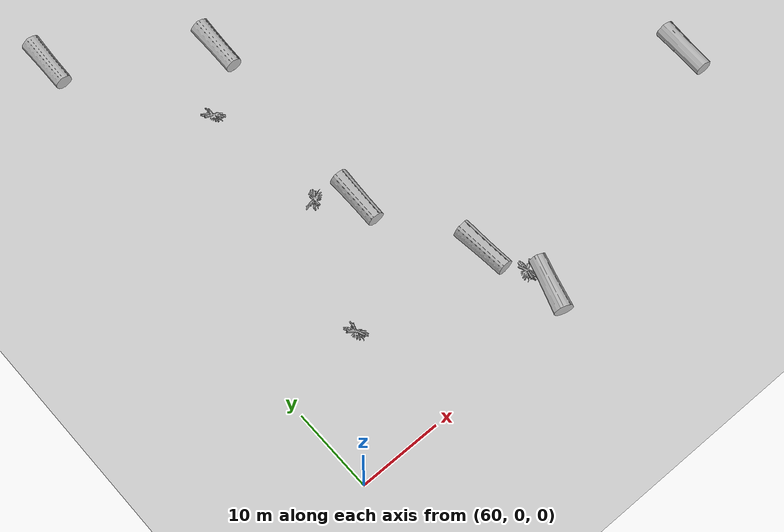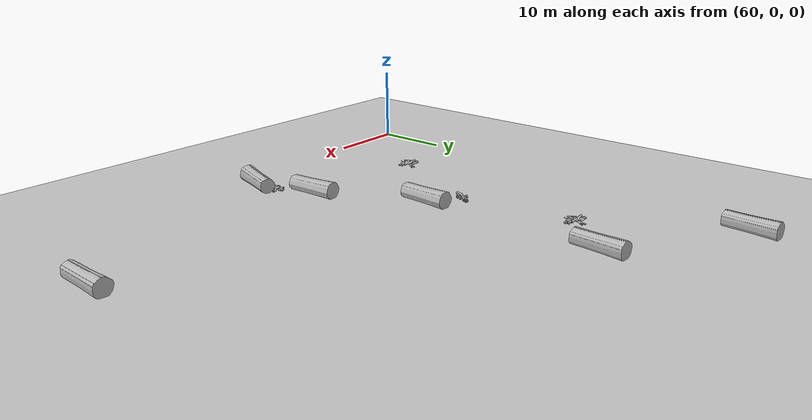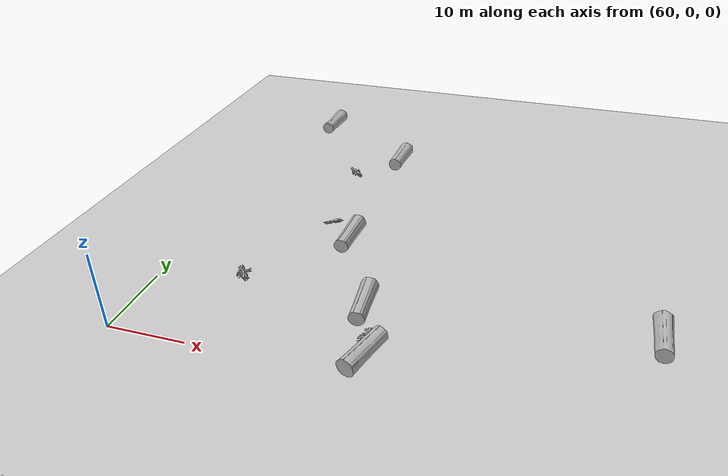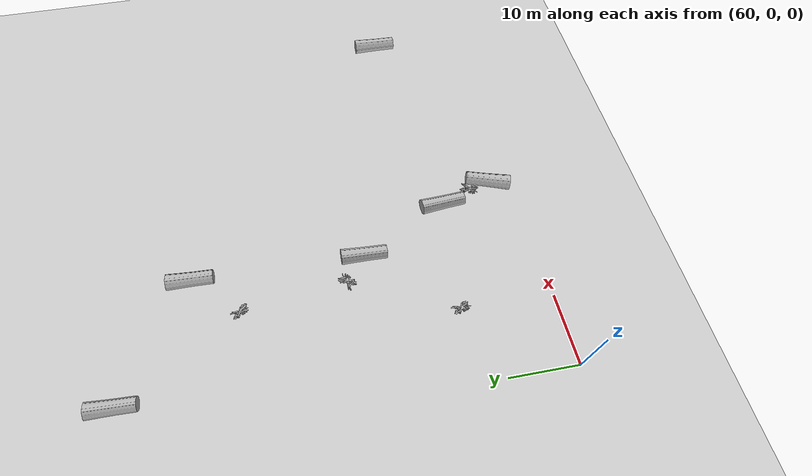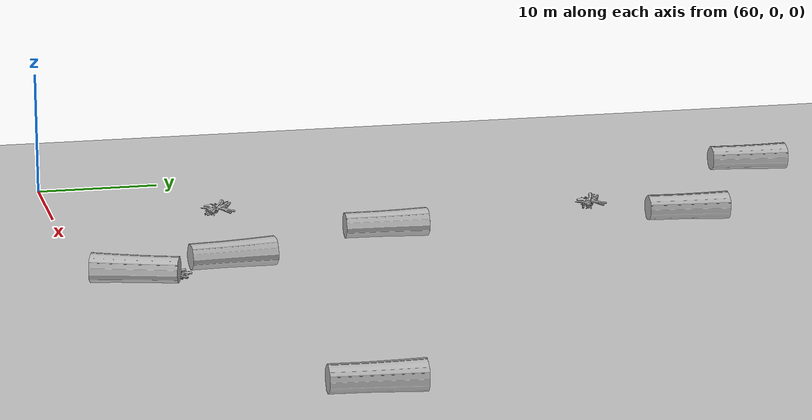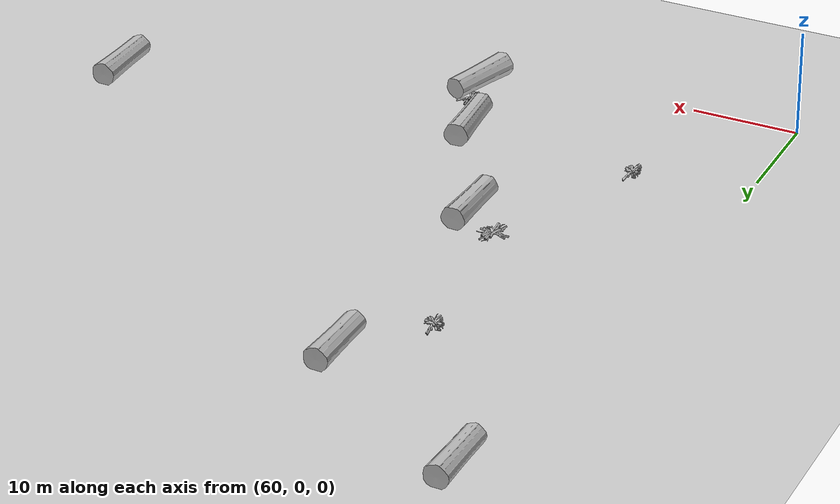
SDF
<sdf version="1.7">
 <world name="default">
  <model name="ground_plane">
   <static>1</static>
   <link name="link">
    <collision name="collision">
     <geometry><plane><normal>0 0 1</normal><size>100 100</size></plane></geometry>
     <surface><friction><ode><mu>100</mu><mu2>50</mu2></ode></friction></surface>
    </collision>
    <visual name="visual">
     <cast_shadows>0</cast_shadows>
     <geometry><plane><normal>0 0 1</normal><size>100 100</size></plane></geometry>
     <material>
      <script><uri>file://media/materials/scripts/gazebo.material</uri><name>Gazebo/Grey</name></script>
     </material>
    </visual>
   </link>
   <pose>0 0 -0.1 0 -0 0</pose>
  </model>
  <model name="buoy_1">
   <link name="link">
    <inertial>
     <pose>0 0 -2 0 -0 0</pose>
     <mass>20</mass>
     <inertia><ixx>1</ixx><ixy>0</ixy><ixz>0</ixz><iyy>1</iyy><iyz>0</iyz><izz>0.1</izz></inertia>
    </inertial>
    <collision name="upright">
     <geometry><mesh><uri>model://branche1_buoy/meshes/branche1.dae</uri></mesh></geometry>
    </collision>
    <visual name="trunk_visual">
     <geometry><mesh><uri>model://branche1_buoy/meshes/branche1.dae</uri></mesh></geometry>
    </visual>
   </link>
   <plugin name="TrunkBuoyancyPlugin" filename="libbuoyancy_gazebo_plugin.so">
    <wave_model>ocean_waves</wave_model>
    <fluid_density>1000</fluid_density>
    <fluid_level>0.0</fluid_level>
    <linear_drag>25.0</linear_drag>
    <angular_drag>2.0</angular_drag>
    <buoyancy name="buoyancy_sphere">
     <link_name>link</link_name>
     <pose>0 0 0.2 0 0 0</pose>
     <geometry><sphere><radius>0.325</radius></sphere></geometry>
    </buoyancy>
   </plugin>
   <plugin name="TrunkFollowPlugin" filename="libfollow_plugin.so">
    <link_name>link</link_name>
    <loop_forever>1</loop_forever>
    <line><direction>0</direction><length>-1</length><force>100</force><torque>1</torque></line>
   </plugin>
   <pose>89.2057 6.7107 -0.029622 0.026638 0.054232 -0.17543</pose>
  </model>
  <model name="buoy_2">
   <link name="link">
    <inertial>
     <pose>0 0 -2 0 -0 0</pose>
     <mass>20</mass>
     <inertia><ixx>1</ixx><ixy>0</ixy><ixz>0</ixz><iyy>1</iyy><iyz>0</iyz><izz>0.1</izz></inertia>
    </inertial>
    <collision name="upright">
     <geometry><mesh><uri>model://branche1_buoy/meshes/branche1.dae</uri></mesh></geometry>
    </collision>
    <visual name="trunk_visual">
     <geometry><mesh><uri>model://branche1_buoy/meshes/branche1.dae</uri></mesh></geometry>
    </visual>
   </link>
   <plugin name="TrunkBuoyancyPlugin" filename="libbuoyancy_gazebo_plugin.so">
    <wave_model>ocean_waves</wave_model>
    <fluid_density>1000</fluid_density>
    <fluid_level>0.0</fluid_level>
    <linear_drag>25.0</linear_drag>
    <angular_drag>2.0</angular_drag>
    <buoyancy name="buoyancy_sphere">
     <link_name>link</link_name>
     <pose>0 0 0.2 0 0 0</pose>
     <geometry><sphere><radius>0.325</radius></sphere></geometry>
    </buoyancy>
   </plugin>
   <plugin name="TrunkFollowPlugin" filename="libfollow_plugin.so">
    <link_name>link</link_name>
    <loop_forever>1</loop_forever>
    <line><direction>0</direction><length>-1</length><force>100</force><torque>1</torque></line>
   </plugin>
   <pose>70.4312 13.3959 0.209275 0.116873 0.35758 0.494458</pose>
  </model>
  <model name="buoy_7">
   <link name="link">
    <inertial>
     <mass>200</mass>
     <inertia><ixx>10</ixx><ixy>0</ixy><ixz>0</ixz><iyy>10</iyy><iyz>0</iyz><izz>100</izz></inertia>
    </inertial>
    <collision name="trunk_collision">
     <pose>0 0 0 1.57 -0 0</pose>
     <geometry><cylinder><radius>1</radius><length>7</length></cylinder></geometry>
    </collision>
    <visual name="trunk_visual">
     <geometry><mesh><uri>model://trunk2_buoy/meshes/trunk2.dae</uri></mesh></geometry>
    </visual>
   </link>
   <plugin name="TrunkFollowPlugin" filename="libfollow_plugin.so">
    <link_name>link</link_name>
    <loop_forever>1</loop_forever>
    <line><direction>0</direction><length>10</length><force>1</force><torque>-10</torque></line>
   </plugin>
   <pose>87.1909 11.7112 0.9 -3.1408 1.53259 -3.03603</pose>
  </model>
  <model name="buoy_8">
   <link name="link">
    <inertial>
     <mass>200</mass>
     <inertia><ixx>10</ixx><ixy>0</ixy><ixz>0</ixz><iyy>10</iyy><iyz>0</iyz><izz>100</izz></inertia>
    </inertial>
    <collision name="trunk_collision">
     <pose>0 0 0 1.57 -0 0</pose>
     <geometry><cylinder><radius>1</radius><length>7</length></cylinder></geometry>
    </collision>
    <visual name="trunk_visual">
     <geometry><mesh><uri>model://trunk2_buoy/meshes/trunk2.dae</uri></mesh></geometry>
    </visual>
   </link>
   <plugin name="TrunkFollowPlugin" filename="libfollow_plugin.so">
    <link_name>link</link_name>
    <loop_forever>1</loop_forever>
    <line><direction>0</direction><length>10</length><force>1</force><torque>-10</torque></line>
   </plugin>
   <pose>121.153 15.1953 0.899983 -3.14079 1.12479 3.12877</pose>
  </model>
  <model name="buoy_12">
   <link name="link">
    <inertial>
     <pose>0 0 -2 0 -0 0</pose>
     <mass>20</mass>
     <inertia><ixx>1</ixx><ixy>0</ixy><ixz>0</ixz><iyy>1</iyy><iyz>0</iyz><izz>0.1</izz></inertia>
    </inertial>
    <collision name="upright">
     <geometry><mesh><uri>model://branche1_buoy/meshes/branche1.dae</uri></mesh></geometry>
    </collision>
    <visual name="trunk_visual">
     <geometry><mesh><uri>model://branche1_buoy/meshes/branche1.dae</uri></mesh></geometry>
    </visual>
   </link>
   <plugin name="TrunkBuoyancyPlugin" filename="libbuoyancy_gazebo_plugin.so">
    <wave_model>ocean_waves</wave_model>
    <fluid_density>1000</fluid_density>
    <fluid_level>0.0</fluid_level>
    <linear_drag>25.0</linear_drag>
    <angular_drag>2.0</angular_drag>
    <buoyancy name="buoyancy_sphere">
     <link_name>link</link_name>
     <pose>0 0 0.2 0 0 0</pose>
     <geometry><sphere><radius>0.325</radius></sphere></geometry>
    </buoyancy>
   </plugin>
   <plugin name="TrunkFollowPlugin" filename="libfollow_plugin.so">
    <link_name>link</link_name>
    <loop_forever>1</loop_forever>
    <line><direction>0</direction><length>-1</length><force>100</force><torque>1</torque></line>
   </plugin>
   <pose>77.1467 28.192 0.20271 0.11511 0.348744 2.48902</pose>
  </model>
  <model name="buoy_16">
   <link name="link">
    <inertial>
     <mass>200</mass>
     <inertia><ixx>10</ixx><ixy>0</ixy><ixz>0</ixz><iyy>10</iyy><iyz>0</iyz><izz>100</izz></inertia>
    </inertial>
    <collision name="trunk_collision">
     <pose>0 0 0 1.57 -0 0</pose>
     <geometry><cylinder><radius>1</radius><length>7</length></cylinder></geometry>
    </collision>
    <visual name="trunk_visual">
     <geometry><mesh><uri>model://trunk2_buoy/meshes/trunk2.dae</uri></mesh></geometry>
    </visual>
   </link>
   <plugin name="TrunkFollowPlugin" filename="libfollow_plugin.so">
    <link_name>link</link_name>
    <loop_forever>1</loop_forever>
    <line><direction>0</direction><length>10</length><force>1</force><torque>-10</torque></line>
   </plugin>
   <pose>89.7304 3.65576 0.899997 0.000798 1.30696 2.86375</pose>
  </model>
  <model name="buoy_17">
   <link name="link">
    <inertial>
     <mass>200</mass>
     <inertia><ixx>10</ixx><ixy>0</ixy><ixz>0</ixz><iyy>10</iyy><iyz>0</iyz><izz>100</izz></inertia>
    </inertial>
    <collision name="trunk_collision">
     <pose>0 0 0 1.57 -0 0</pose>
     <geometry><cylinder><radius>1</radius><length>7</length></cylinder></geometry>
    </collision>
    <visual name="trunk_visual">
     <geometry><mesh><uri>model://trunk2_buoy/meshes/trunk2.dae</uri></mesh></geometry>
    </visual>
   </link>
   <plugin name="TrunkFollowPlugin" filename="libfollow_plugin.so">
    <link_name>link</link_name>
    <loop_forever>1</loop_forever>
    <line><direction>0</direction><length>10</length><force>1</force><torque>-10</torque></line>
   </plugin>
   <pose>80.7636 25.1912 0.9 -3.1408 1.52477 3.13733</pose>
  </model>
  <model name="buoy_22">
   <link name="link">
    <inertial>
     <pose>0 0 -2 0 -0 0</pose>
     <mass>20</mass>
     <inertia><ixx>1</ixx><ixy>0</ixy><ixz>0</ixz><iyy>1</iyy><iyz>0</iyz><izz>0.1</izz></inertia>
    </inertial>
    <collision name="upright">
     <geometry><mesh><uri>model://branche1_buoy/meshes/branche1.dae</uri></mesh></geometry>
    </collision>
    <visual name="trunk_visual">
     <geometry><mesh><uri>model://branche1_buoy/meshes/branche1.dae</uri></mesh></geometry>
    </visual>
   </link>
   <plugin name="TrunkBuoyancyPlugin" filename="libbuoyancy_gazebo_plugin.so">
    <wave_model>ocean_waves</wave_model>
    <fluid_density>1000</fluid_density>
    <fluid_level>0.0</fluid_level>
    <linear_drag>25.0</linear_drag>
    <angular_drag>2.0</angular_drag>
    <buoyancy name="buoyancy_sphere">
     <link_name>link</link_name>
     <pose>0 0 0.2 0 0 0</pose>
     <geometry><sphere><radius>0.325</radius></sphere></geometry>
    </buoyancy>
   </plugin>
   <plugin name="TrunkFollowPlugin" filename="libfollow_plugin.so">
    <link_name>link</link_name>
    <loop_forever>1</loop_forever>
    <line><direction>0</direction><length>-1</length><force>100</force><torque>1</torque></line>
   </plugin>
   <pose>75.301 43.6361 0.199568 0.113882 0.345467 0.747649</pose>
  </model>
  <model name="buoy_27">
   <link name="link">
    <inertial>
     <mass>200</mass>
     <inertia><ixx>10</ixx><ixy>0</ixy><ixz>0</ixz><iyy>10</iyy><iyz>0</iyz><izz>100</izz></inertia>
    </inertial>
    <collision name="trunk_collision">
     <pose>0 0 0 1.57 -0 0</pose>
     <geometry><cylinder><radius>1</radius><length>7</length></cylinder></geometry>
    </collision>
    <visual name="trunk_visual">
     <geometry><mesh><uri>model://trunk2_buoy/meshes/trunk2.dae</uri></mesh></geometry>
    </visual>
   </link>
   <plugin name="TrunkFollowPlugin" filename="libfollow_plugin.so">
    <link_name>link</link_name>
    <loop_forever>1</loop_forever>
    <line><direction>0</direction><length>10</length><force>1</force><torque>-10</torque></line>
   </plugin>
   <pose>81.1526 50.1953 0.899983 -3.14079 1.12478 3.12877</pose>
  </model>
  <model name="buoy_26_clone_1">
   <link name="link">
    <inertial>
     <mass>200</mass>
     <inertia><ixx>10</ixx><ixy>0</ixy><ixz>0</ixz><iyy>10</iyy><iyz>0</iyz><izz>100</izz></inertia>
    </inertial>
    <collision name="trunk_collision">
     <pose>0 0 0 1.57 -0 0</pose>
     <geometry><cylinder><radius>1</radius><length>7</length></cylinder></geometry>
    </collision>
    <visual name="trunk_visual">
     <geometry><mesh><uri>model://trunk2_buoy/meshes/trunk2.dae</uri></mesh></geometry>
    </visual>
   </link>
   <plugin name="TrunkFollowPlugin" filename="libfollow_plugin.so">
    <link_name>link</link_name>
    <loop_forever>1</loop_forever>
    <line><direction>0</direction><length>10</length><force>1</force><torque>-10</torque></line>
   </plugin>
   <pose>65.2621 61.0191 0.899983 -3.14078 1.17335 3.13353</pose>
  </model>
 </world>
</sdf>
